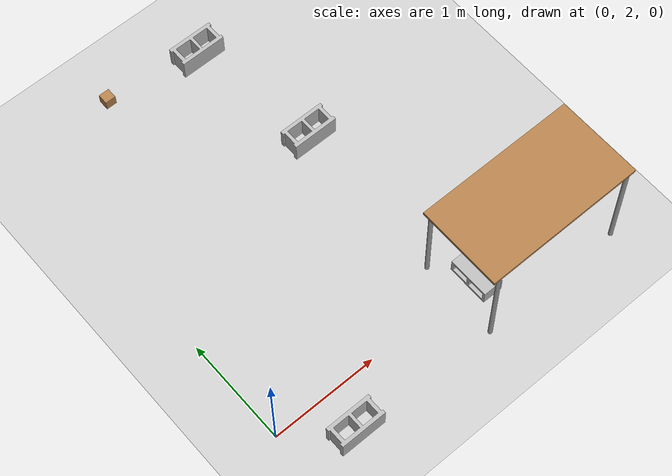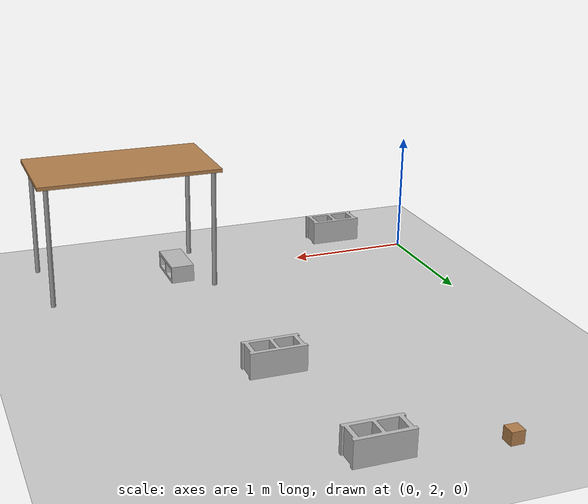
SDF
<sdf version="1.7">
 <world name="default">
  <light name="sun" type="directional">
   <pose>0 0 10 0 -0 0</pose>
   <diffuse>0.8 0.8 0.8 1</diffuse>
   <specular>0.2 0.2 0.2 1</specular>
   <attenuation>
    <range>1000</range>
    <constant>0.9</constant>
    <linear>0.01</linear>
    <quadratic>0.001</quadratic>
   </attenuation>
   <direction>-0.5 0.1 -0.9</direction>
   <spot><inner_angle>0</inner_angle><outer_angle>0</outer_angle><falloff>0</falloff></spot>
  </light>
  <model name="ground_plane">
   <static>1</static>
   <link name="link">
    <collision name="collision">
     <geometry><plane><normal>0 0 1</normal><size>100 100</size></plane></geometry>
     <surface>
      <contact><collide_bitmask>65535</collide_bitmask></contact>
      <friction><ode><mu>100</mu><mu2>50</mu2></ode></friction>
     </surface>
    </collision>
    <visual name="visual">
     <cast_shadows>0</cast_shadows>
     <geometry><plane><normal>0 0 1</normal><size>100 100</size></plane></geometry>
     <material>
      <script><uri>file://media/materials/scripts/gazebo.material</uri><name>Gazebo/Grey</name></script>
     </material>
    </visual>
   </link>
  </model>
  <gravity>0 0 -9.8</gravity>
  <magnetic_field>6e-06 2.3e-05 -4.2e-05</magnetic_field>
  <atmosphere type="adiabatic"/>
  <physics type="ode">
   <max_step_size>0.001</max_step_size>
   <real_time_factor>1</real_time_factor>
   <real_time_update_rate>1000</real_time_update_rate>
  </physics>
  <scene><ambient>0.4 0.4 0.4 1</ambient><background>0.7 0.7 0.7 1</background><shadows>1</shadows></scene>
  <audio><device>default</device></audio>
  <spherical_coordinates>
   <surface_model>EARTH_WGS84</surface_model>
   <latitude_deg>0</latitude_deg>
   <longitude_deg>0</longitude_deg>
   <elevation>0</elevation>
   <heading_deg>0</heading_deg>
  </spherical_coordinates>
  <model name="cinder_block">
   <link name="link">
    <inertial>
     <pose>0 0 0.1016 0 -0 0</pose>
     <mass>5</mass>
     <inertia>
      <ixx>0.028705</ixx>
      <ixy>0</ixy>
      <iyy>0.073708</iyy>
      <ixz>0</ixz>
      <iyz>0</iyz>
      <izz>0.06908</izz>
     </inertia>
    </inertial>
    <visual name="visual">
     <geometry><mesh><uri>model://cinder_block/meshes/cinder_block.dae</uri></mesh></geometry>
    </visual>
    <collision name="left">
     <pose>0 -0.08465 0.1016 0 -0 0</pose>
     <geometry><box><size>0.43495 0.0339 0.2032</size></box></geometry>
     <surface>
      <contact><ode><max_vel>0.1</max_vel><min_depth>0.001</min_depth></ode></contact>
      <friction><ode><mu>1</mu><mu2>1</mu2></ode></friction>
     </surface>
    </collision>
    <collision name="right">
     <pose>0 0.08465 0.1016 0 -0 0</pose>
     <geometry><box><size>0.43495 0.0339 0.2032</size></box></geometry>
     <surface>
      <contact><ode><max_vel>0.1</max_vel><min_depth>0.001</min_depth></ode></contact>
      <friction><ode><mu>1</mu><mu2>1</mu2></ode></friction>
     </surface>
    </collision>
    <collision name="front">
     <pose>0.18625 0 0.1016 0 -0 0</pose>
     <geometry><box><size>0.0339 0.1354 0.203</size></box></geometry>
     <surface>
      <contact><ode><max_vel>0.1</max_vel><min_depth>0.001</min_depth></ode></contact>
      <friction><ode><mu>1</mu><mu2>1</mu2></ode></friction>
     </surface>
    </collision>
    <collision name="middle">
     <pose>0 0 0.1016 0 -0 0</pose>
     <geometry><box><size>0.0339 0.1354 0.203</size></box></geometry>
     <surface>
      <contact><ode><max_vel>0.1</max_vel><min_depth>0.001</min_depth></ode></contact>
      <friction><ode><mu>1</mu><mu2>1</mu2></ode></friction>
     </surface>
    </collision>
    <collision name="back">
     <pose>-0.18625 0 0.1016 0 -0 0</pose>
     <geometry><box><size>0.0339 0.1354 0.203</size></box></geometry>
     <surface>
      <contact><ode><max_vel>0.1</max_vel><min_depth>0.001</min_depth></ode></contact>
      <friction><ode><mu>1</mu><mu2>1</mu2></ode></friction>
     </surface>
    </collision>
   </link>
   <pose>0.509236 1.63546 -6e-06 -1e-06 2.8e-05 -0</pose>
  </model>
  <model name="cinder_block_2">
   <link name="link">
    <inertial>
     <pose>0 0 0.071438 0 -0 0</pose>
     <mass>5</mass>
     <inertia>
      <ixx>0.06908</ixx>
      <ixy>0</ixy>
      <iyy>0.028705</iyy>
      <ixz>0</ixz>
      <iyz>0</iyz>
      <izz>0.073708</izz>
     </inertia>
    </inertial>
    <visual name="visual">
     <geometry><mesh><uri>model://cinder_block_2/meshes/cinder_block.dae</uri></mesh></geometry>
    </visual>
    <collision name="top">
     <pose>0 0 0.130175 0 -0 0</pose>
     <geometry><box><size>0.19368 0.396875 0.0254</size></box></geometry>
     <surface>
      <contact><ode><max_vel>0.1</max_vel><min_depth>0.001</min_depth></ode></contact>
      <friction><ode><mu>1</mu><mu2>1</mu2></ode></friction>
     </surface>
    </collision>
    <collision name="bottom">
     <pose>0 0 0.0127 0 -0 0</pose>
     <geometry><box><size>0.19368 0.396875 0.0254</size></box></geometry>
     <surface>
      <contact><ode><max_vel>0.1</max_vel><min_depth>0.001</min_depth></ode></contact>
      <friction><ode><mu>1</mu><mu2>1</mu2></ode></friction>
     </surface>
    </collision>
    <collision name="left">
     <pose>0 -0.185738 0.071438 0 -0 0</pose>
     <geometry><box><size>0.19368 0.0254 0.092075</size></box></geometry>
     <surface>
      <contact><ode><max_vel>0.1</max_vel><min_depth>0.001</min_depth></ode></contact>
      <friction><ode><mu>1</mu><mu2>1</mu2></ode></friction>
     </surface>
    </collision>
    <collision name="right">
     <pose>0 0.185738 0.071438 0 -0 0</pose>
     <geometry><box><size>0.19368 0.0254 0.092075</size></box></geometry>
     <surface>
      <contact><ode><max_vel>0.1</max_vel><min_depth>0.001</min_depth></ode></contact>
      <friction><ode><mu>1</mu><mu2>1</mu2></ode></friction>
     </surface>
    </collision>
    <collision name="middle">
     <pose>0 0 0.071438 0 -0 0</pose>
     <geometry><box><size>0.19368 0.0254 0.092075</size></box></geometry>
     <surface>
      <contact><ode><max_vel>0.1</max_vel><min_depth>0.001</min_depth></ode></contact>
      <friction><ode><mu>1</mu><mu2>1</mu2></ode></friction>
     </surface>
    </collision>
   </link>
   <pose>2.11144 1.98766 -1e-05 0 -0 0</pose>
  </model>
  <model name="table">
   <static>1</static>
   <link name="link">
    <collision name="surface">
     <pose>0 0 1 0 -0 0</pose>
     <geometry><box><size>1.5 0.8 0.03</size></box></geometry>
     <surface><friction><ode><mu>0.6</mu><mu2>0.6</mu2></ode></friction></surface>
    </collision>
    <visual name="visual1">
     <pose>0 0 1 0 -0 0</pose>
     <geometry><box><size>1.5 0.8 0.03</size></box></geometry>
     <material>
      <script><uri>file://media/materials/scripts/gazebo.material</uri><name>Gazebo/Wood</name></script>
     </material>
    </visual>
    <collision name="front_left_leg">
     <pose>0.68 0.38 0.5 0 -0 0</pose>
     <geometry><cylinder><radius>0.02</radius><length>1</length></cylinder></geometry>
    </collision>
    <visual name="front_left_leg">
     <pose>0.68 0.38 0.5 0 -0 0</pose>
     <geometry><cylinder><radius>0.02</radius><length>1</length></cylinder></geometry>
     <material>
      <script><uri>file://media/materials/scripts/gazebo.material</uri><name>Gazebo/Grey</name></script>
     </material>
    </visual>
    <collision name="front_right_leg">
     <pose>0.68 -0.38 0.5 0 -0 0</pose>
     <geometry><cylinder><radius>0.02</radius><length>1</length></cylinder></geometry>
    </collision>
    <visual name="front_right_leg">
     <pose>0.68 -0.38 0.5 0 -0 0</pose>
     <geometry><cylinder><radius>0.02</radius><length>1</length></cylinder></geometry>
     <material>
      <script><uri>file://media/materials/scripts/gazebo.material</uri><name>Gazebo/Grey</name></script>
     </material>
    </visual>
    <collision name="back_right_leg">
     <pose>-0.68 -0.38 0.5 0 -0 0</pose>
     <geometry><cylinder><radius>0.02</radius><length>1</length></cylinder></geometry>
    </collision>
    <visual name="back_right_leg">
     <pose>-0.68 -0.38 0.5 0 -0 0</pose>
     <geometry><cylinder><radius>0.02</radius><length>1</length></cylinder></geometry>
     <material>
      <script><uri>file://media/materials/scripts/gazebo.material</uri><name>Gazebo/Grey</name></script>
     </material>
    </visual>
    <collision name="back_left_leg">
     <pose>-0.68 0.38 0.5 0 -0 0</pose>
     <geometry><cylinder><radius>0.02</radius><length>1</length></cylinder></geometry>
    </collision>
    <visual name="back_left_leg">
     <pose>-0.68 0.38 0.5 0 -0 0</pose>
     <geometry><cylinder><radius>0.02</radius><length>1</length></cylinder></geometry>
     <material>
      <script><uri>file://media/materials/scripts/gazebo.material</uri><name>Gazebo/Grey</name></script>
     </material>
    </visual>
   </link>
   <pose>2.55571 1.94459 0 0 -0 0</pose>
  </model>
  <model name="wood_cube_10cm">
   <link name="link">
    <pose>0 0 0.05 0 -0 0</pose>
    <inertial>
     <mass>0.5167</mass>
     <inertia>
      <ixx>0.000861167</ixx>
      <ixy>0</ixy>
      <ixz>0</ixz>
      <iyy>0.000861167</iyy>
      <iyz>0</iyz>
      <izz>0.000861167</izz>
     </inertia>
    </inertial>
    <collision name="collision">
     <geometry><box><size>0.1 0.1 0.1</size></box></geometry>
     <surface>
      <contact>
       <poissons_ratio>0.347</poissons_ratio>
       <elastic_modulus>8.8e+09</elastic_modulus>
       <ode><kp>100000</kp><kd>100</kd><max_vel>100</max_vel><min_depth>0.001</min_depth></ode>
      </contact>
      <friction>
       <torsional>
        <coefficient>1</coefficient>
        <use_patch_radius>0</use_patch_radius>
        <surface_radius>0.01</surface_radius>
       </torsional>
      </friction>
     </surface>
    </collision>
    <visual name="visual">
     <geometry><box><size>0.1 0.1 0.1</size></box></geometry>
     <material>
      <script><uri>file://media/materials/scripts/gazebo.material</uri><name>Gazebo/Wood</name></script>
     </material>
    </visual>
   </link>
   <pose>0.859482 5.30694 -0.001013 0 -0 0</pose>
  </model>
  <model name="cinder_block_clone">
   <link name="link">
    <inertial>
     <pose>0 0 0.1016 0 -0 0</pose>
     <mass>5</mass>
     <inertia>
      <ixx>0.028705</ixx>
      <ixy>0</ixy>
      <iyy>0.073708</iyy>
      <ixz>0</ixz>
      <iyz>0</iyz>
      <izz>0.06908</izz>
     </inertia>
    </inertial>
    <visual name="visual">
     <geometry><mesh><uri>model://cinder_block/meshes/cinder_block.dae</uri></mesh></geometry>
    </visual>
    <collision name="left">
     <pose>0 -0.08465 0.1016 0 -0 0</pose>
     <geometry><box><size>0.43495 0.0339 0.2032</size></box></geometry>
     <surface>
      <contact><ode><max_vel>0.1</max_vel><min_depth>0.001</min_depth></ode></contact>
      <friction><ode><mu>1</mu><mu2>1</mu2></ode></friction>
     </surface>
    </collision>
    <collision name="right">
     <pose>0 0.08465 0.1016 0 -0 0</pose>
     <geometry><box><size>0.43495 0.0339 0.2032</size></box></geometry>
     <surface>
      <contact><ode><max_vel>0.1</max_vel><min_depth>0.001</min_depth></ode></contact>
      <friction><ode><mu>1</mu><mu2>1</mu2></ode></friction>
     </surface>
    </collision>
    <collision name="front">
     <pose>0.18625 0 0.1016 0 -0 0</pose>
     <geometry><box><size>0.0339 0.1354 0.203</size></box></geometry>
     <surface>
      <contact><ode><max_vel>0.1</max_vel><min_depth>0.001</min_depth></ode></contact>
      <friction><ode><mu>1</mu><mu2>1</mu2></ode></friction>
     </surface>
    </collision>
    <collision name="middle">
     <pose>0 0 0.1016 0 -0 0</pose>
     <geometry><box><size>0.0339 0.1354 0.203</size></box></geometry>
     <surface>
      <contact><ode><max_vel>0.1</max_vel><min_depth>0.001</min_depth></ode></contact>
      <friction><ode><mu>1</mu><mu2>1</mu2></ode></friction>
     </surface>
    </collision>
    <collision name="back">
     <pose>-0.18625 0 0.1016 0 -0 0</pose>
     <geometry><box><size>0.0339 0.1354 0.203</size></box></geometry>
     <surface>
      <contact><ode><max_vel>0.1</max_vel><min_depth>0.001</min_depth></ode></contact>
      <friction><ode><mu>1</mu><mu2>1</mu2></ode></friction>
     </surface>
    </collision>
   </link>
   <pose>1.73819 5.17105 -1.2e-05 1e-06 -1e-06 0</pose>
  </model>
  <model name="cinder_block_clone_clone">
   <link name="link">
    <inertial>
     <pose>0 0 0.1016 0 -0 0</pose>
     <mass>5</mass>
     <inertia>
      <ixx>0.028705</ixx>
      <ixy>0</ixy>
      <iyy>0.073708</iyy>
      <ixz>0</ixz>
      <iyz>0</iyz>
      <izz>0.06908</izz>
     </inertia>
    </inertial>
    <visual name="visual">
     <geometry><mesh><uri>model://cinder_block/meshes/cinder_block.dae</uri></mesh></geometry>
    </visual>
    <collision name="left">
     <pose>0 -0.08465 0.1016 0 -0 0</pose>
     <geometry><box><size>0.43495 0.0339 0.2032</size></box></geometry>
     <surface>
      <contact><ode><max_vel>0.1</max_vel><min_depth>0.001</min_depth></ode></contact>
      <friction><ode><mu>1</mu><mu2>1</mu2></ode></friction>
     </surface>
    </collision>
    <collision name="right">
     <pose>0 0.08465 0.1016 0 -0 0</pose>
     <geometry><box><size>0.43495 0.0339 0.2032</size></box></geometry>
     <surface>
      <contact><ode><max_vel>0.1</max_vel><min_depth>0.001</min_depth></ode></contact>
      <friction><ode><mu>1</mu><mu2>1</mu2></ode></friction>
     </surface>
    </collision>
    <collision name="front">
     <pose>0.18625 0 0.1016 0 -0 0</pose>
     <geometry><box><size>0.0339 0.1354 0.203</size></box></geometry>
     <surface>
      <contact><ode><max_vel>0.1</max_vel><min_depth>0.001</min_depth></ode></contact>
      <friction><ode><mu>1</mu><mu2>1</mu2></ode></friction>
     </surface>
    </collision>
    <collision name="middle">
     <pose>0 0 0.1016 0 -0 0</pose>
     <geometry><box><size>0.0339 0.1354 0.203</size></box></geometry>
     <surface>
      <contact><ode><max_vel>0.1</max_vel><min_depth>0.001</min_depth></ode></contact>
      <friction><ode><mu>1</mu><mu2>1</mu2></ode></friction>
     </surface>
    </collision>
    <collision name="back">
     <pose>-0.18625 0 0.1016 0 -0 0</pose>
     <geometry><box><size>0.0339 0.1354 0.203</size></box></geometry>
     <surface>
      <contact><ode><max_vel>0.1</max_vel><min_depth>0.001</min_depth></ode></contact>
      <friction><ode><mu>1</mu><mu2>1</mu2></ode></friction>
     </surface>
    </collision>
   </link>
   <pose>1.94118 3.90644 -1.2e-05 0 -1e-06 0</pose>
  </model>
 </world>
</sdf>
